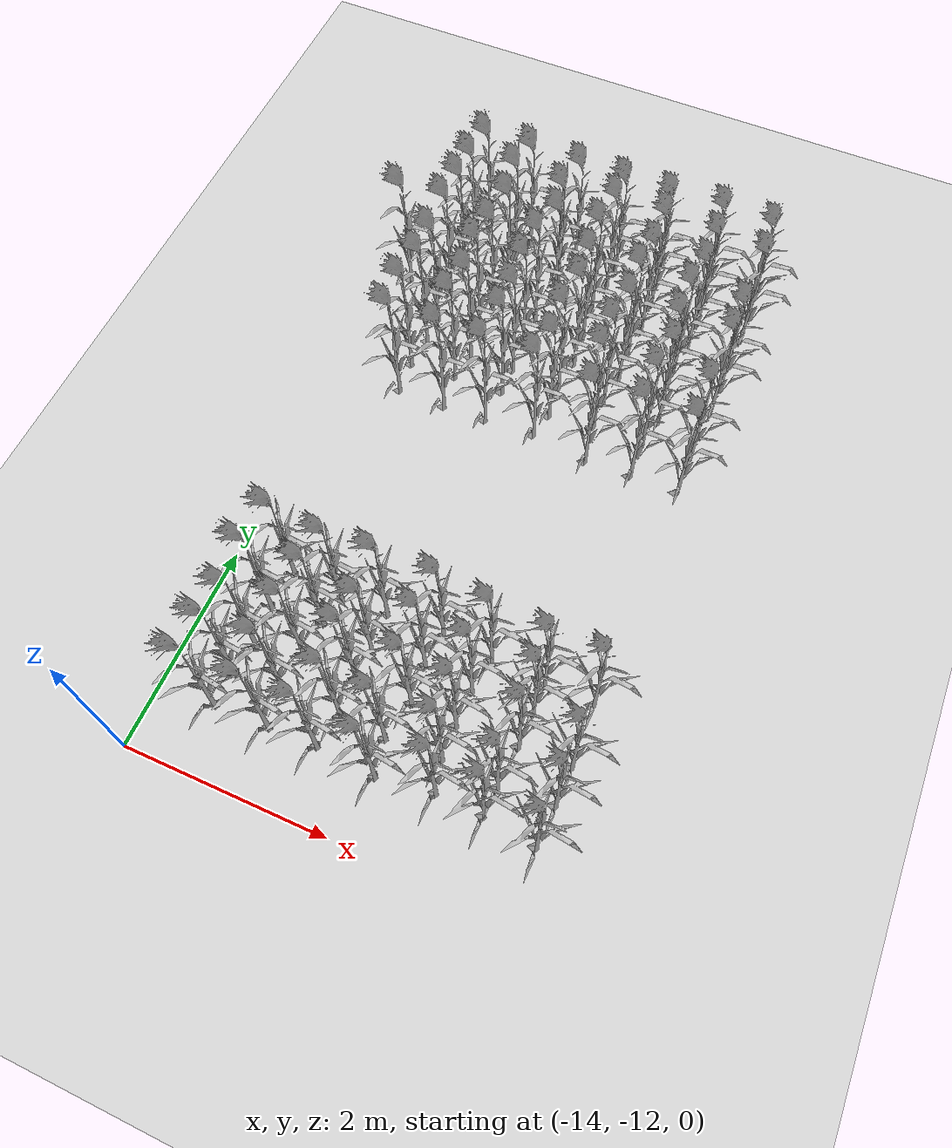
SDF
<sdf version="1.7">
 <world name="farmland_world">
  <model name="ground_plane">
   <static>1</static>
   <link name="link">
    <collision name="collision">
     <geometry><plane><normal>0 0 1</normal><size>40.0 40.0</size></plane></geometry>
     <surface><friction><ode><mu>100</mu><mu2>50</mu2></ode></friction></surface>
    </collision>
    <visual name="visual">
     <cast_shadows>0</cast_shadows>
     <geometry><plane><normal>0 0 1</normal><size>40.0 40.0</size></plane></geometry>
     <material>
      <script><uri>file://media/materials/scripts/gazebo.material</uri><name>Gazebo/Grey</name></script>
     </material>
    </visual>
   </link>
  </model>
  <model name="tree_3_2033">
   <static>1</static>
   <link name="link">
    <collision name="collision">
     <geometry><mesh><uri>model://Corn_low_poly/corn.obj</uri><scale>1 1 1</scale></mesh></geometry>
     <surface><friction><ode><mu>100</mu><mu2>50</mu2></ode></friction></surface>
    </collision>
    <visual name="visual">
     <geometry><mesh><uri>model://Corn_low_poly/corn.obj</uri><scale>1 1 1</scale></mesh></geometry>
    </visual>
   </link>
   <pose>-10.307350498866327 -10.979306485411822 0 0 0 0</pose>
  </model>
  <model name="tree_3_2034">
   <static>1</static>
   <link name="link">
    <collision name="collision">
     <geometry><mesh><uri>model://Corn_low_poly/corn.obj</uri><scale>1 1 1</scale></mesh></geometry>
     <surface><friction><ode><mu>100</mu><mu2>50</mu2></ode></friction></surface>
    </collision>
    <visual name="visual">
     <geometry><mesh><uri>model://Corn_low_poly/corn.obj</uri><scale>1 1 1</scale></mesh></geometry>
    </visual>
   </link>
   <pose>-10.81992295470354 -11.039050765362639 0 0 0 0</pose>
  </model>
  <model name="tree_3_2035">
   <static>1</static>
   <link name="link">
    <collision name="collision">
     <geometry><mesh><uri>model://Corn_low_poly/corn.obj</uri><scale>1 1 1</scale></mesh></geometry>
     <surface><friction><ode><mu>100</mu><mu2>50</mu2></ode></friction></surface>
    </collision>
    <visual name="visual">
     <geometry><mesh><uri>model://Corn_low_poly/corn.obj</uri><scale>1 1 1</scale></mesh></geometry>
    </visual>
   </link>
   <pose>-11.359939570982707 -10.996293365266883 0 0 0 0</pose>
  </model>
  <model name="tree_3_2036">
   <static>1</static>
   <link name="link">
    <collision name="collision">
     <geometry><mesh><uri>model://Corn_low_poly/corn.obj</uri><scale>1 1 1</scale></mesh></geometry>
     <surface><friction><ode><mu>100</mu><mu2>50</mu2></ode></friction></surface>
    </collision>
    <visual name="visual">
     <geometry><mesh><uri>model://Corn_low_poly/corn.obj</uri><scale>1 1 1</scale></mesh></geometry>
    </visual>
   </link>
   <pose>-11.891780618892657 -11.02901635230057 0 0 0 0</pose>
  </model>
  <model name="tree_3_2037">
   <static>1</static>
   <link name="link">
    <collision name="collision">
     <geometry><mesh><uri>model://Corn_low_poly/corn.obj</uri><scale>1 1 1</scale></mesh></geometry>
     <surface><friction><ode><mu>100</mu><mu2>50</mu2></ode></friction></surface>
    </collision>
    <visual name="visual">
     <geometry><mesh><uri>model://Corn_low_poly/corn.obj</uri><scale>1 1 1</scale></mesh></geometry>
    </visual>
   </link>
   <pose>-12.338765330459179 -11.003636147406816 0 0 0 0</pose>
  </model>
  <model name="tree_3_2038">
   <static>1</static>
   <link name="link">
    <collision name="collision">
     <geometry><mesh><uri>model://Corn_low_poly/corn.obj</uri><scale>1 1 1</scale></mesh></geometry>
     <surface><friction><ode><mu>100</mu><mu2>50</mu2></ode></friction></surface>
    </collision>
    <visual name="visual">
     <geometry><mesh><uri>model://Corn_low_poly/corn.obj</uri><scale>1 1 1</scale></mesh></geometry>
    </visual>
   </link>
   <pose>-12.9247347001114 -10.987375476978293 0 0 0 0</pose>
  </model>
  <model name="tree_3_2039">
   <static>1</static>
   <link name="link">
    <collision name="collision">
     <geometry><mesh><uri>model://Corn_low_poly/corn.obj</uri><scale>1 1 1</scale></mesh></geometry>
     <surface><friction><ode><mu>100</mu><mu2>50</mu2></ode></friction></surface>
    </collision>
    <visual name="visual">
     <geometry><mesh><uri>model://Corn_low_poly/corn.obj</uri><scale>1 1 1</scale></mesh></geometry>
    </visual>
   </link>
   <pose>-13.39242253831518 -11.022844953697483 0 0 0 0</pose>
  </model>
  <model name="tree_3_2067">
   <static>1</static>
   <link name="link">
    <collision name="collision">
     <geometry><mesh><uri>model://Corn_low_poly/corn.obj</uri><scale>1 1 1</scale></mesh></geometry>
     <surface><friction><ode><mu>100</mu><mu2>50</mu2></ode></friction></surface>
    </collision>
    <visual name="visual">
     <geometry><mesh><uri>model://Corn_low_poly/corn.obj</uri><scale>1 1 1</scale></mesh></geometry>
    </visual>
   </link>
   <pose>-10.32691565260788 -11.36323301262793 0 0 0 0</pose>
  </model>
  <model name="tree_3_2068">
   <static>1</static>
   <link name="link">
    <collision name="collision">
     <geometry><mesh><uri>model://Corn_low_poly/corn.obj</uri><scale>1 1 1</scale></mesh></geometry>
     <surface><friction><ode><mu>100</mu><mu2>50</mu2></ode></friction></surface>
    </collision>
    <visual name="visual">
     <geometry><mesh><uri>model://Corn_low_poly/corn.obj</uri><scale>1 1 1</scale></mesh></geometry>
    </visual>
   </link>
   <pose>-10.834406711724855 -11.301494776505798 0 0 0 0</pose>
  </model>
  <model name="tree_3_2069">
   <static>1</static>
   <link name="link">
    <collision name="collision">
     <geometry><mesh><uri>model://Corn_low_poly/corn.obj</uri><scale>1 1 1</scale></mesh></geometry>
     <surface><friction><ode><mu>100</mu><mu2>50</mu2></ode></friction></surface>
    </collision>
    <visual name="visual">
     <geometry><mesh><uri>model://Corn_low_poly/corn.obj</uri><scale>1 1 1</scale></mesh></geometry>
    </visual>
   </link>
   <pose>-11.28816366792222 -11.285866579094362 0 0 0 0</pose>
  </model>
  <model name="tree_3_2070">
   <static>1</static>
   <link name="link">
    <collision name="collision">
     <geometry><mesh><uri>model://Corn_low_poly/corn.obj</uri><scale>1 1 1</scale></mesh></geometry>
     <surface><friction><ode><mu>100</mu><mu2>50</mu2></ode></friction></surface>
    </collision>
    <visual name="visual">
     <geometry><mesh><uri>model://Corn_low_poly/corn.obj</uri><scale>1 1 1</scale></mesh></geometry>
    </visual>
   </link>
   <pose>-11.828668313591823 -11.363795740996746 0 0 0 0</pose>
  </model>
  <model name="tree_3_2071">
   <static>1</static>
   <link name="link">
    <collision name="collision">
     <geometry><mesh><uri>model://Corn_low_poly/corn.obj</uri><scale>1 1 1</scale></mesh></geometry>
     <surface><friction><ode><mu>100</mu><mu2>50</mu2></ode></friction></surface>
    </collision>
    <visual name="visual">
     <geometry><mesh><uri>model://Corn_low_poly/corn.obj</uri><scale>1 1 1</scale></mesh></geometry>
    </visual>
   </link>
   <pose>-12.41205175723617 -11.323564533377777 0 0 0 0</pose>
  </model>
  <model name="tree_3_2072">
   <static>1</static>
   <link name="link">
    <collision name="collision">
     <geometry><mesh><uri>model://Corn_low_poly/corn.obj</uri><scale>1 1 1</scale></mesh></geometry>
     <surface><friction><ode><mu>100</mu><mu2>50</mu2></ode></friction></surface>
    </collision>
    <visual name="visual">
     <geometry><mesh><uri>model://Corn_low_poly/corn.obj</uri><scale>1 1 1</scale></mesh></geometry>
    </visual>
   </link>
   <pose>-12.877377553456837 -11.341753962467255 0 0 0 0</pose>
  </model>
  <model name="tree_3_2073">
   <static>1</static>
   <link name="link">
    <collision name="collision">
     <geometry><mesh><uri>model://Corn_low_poly/corn.obj</uri><scale>1 1 1</scale></mesh></geometry>
     <surface><friction><ode><mu>100</mu><mu2>50</mu2></ode></friction></surface>
    </collision>
    <visual name="visual">
     <geometry><mesh><uri>model://Corn_low_poly/corn.obj</uri><scale>1 1 1</scale></mesh></geometry>
    </visual>
   </link>
   <pose>-13.414365116756489 -11.351254456588023 0 0 0 0</pose>
  </model>
  <model name="tree_3_2135">
   <static>1</static>
   <link name="link">
    <collision name="collision">
     <geometry><mesh><uri>model://Corn_low_poly/corn.obj</uri><scale>1 1 1</scale></mesh></geometry>
     <surface><friction><ode><mu>100</mu><mu2>50</mu2></ode></friction></surface>
    </collision>
    <visual name="visual">
     <geometry><mesh><uri>model://Corn_low_poly/corn.obj</uri><scale>1 1 1</scale></mesh></geometry>
    </visual>
   </link>
   <pose>-10.322381252801687 -10.029420461395906 0 0 0 0</pose>
  </model>
  <model name="tree_3_2136">
   <static>1</static>
   <link name="link">
    <collision name="collision">
     <geometry><mesh><uri>model://Corn_low_poly/corn.obj</uri><scale>1 1 1</scale></mesh></geometry>
     <surface><friction><ode><mu>100</mu><mu2>50</mu2></ode></friction></surface>
    </collision>
    <visual name="visual">
     <geometry><mesh><uri>model://Corn_low_poly/corn.obj</uri><scale>1 1 1</scale></mesh></geometry>
    </visual>
   </link>
   <pose>-10.792267677956493 -10.03441021594048 0 0 0 0</pose>
  </model>
  <model name="tree_3_2137">
   <static>1</static>
   <link name="link">
    <collision name="collision">
     <geometry><mesh><uri>model://Corn_low_poly/corn.obj</uri><scale>1 1 1</scale></mesh></geometry>
     <surface><friction><ode><mu>100</mu><mu2>50</mu2></ode></friction></surface>
    </collision>
    <visual name="visual">
     <geometry><mesh><uri>model://Corn_low_poly/corn.obj</uri><scale>1 1 1</scale></mesh></geometry>
    </visual>
   </link>
   <pose>-11.323362705324373 -10.004644729402486 0 0 0 0</pose>
  </model>
  <model name="tree_3_2138">
   <static>1</static>
   <link name="link">
    <collision name="collision">
     <geometry><mesh><uri>model://Corn_low_poly/corn.obj</uri><scale>1 1 1</scale></mesh></geometry>
     <surface><friction><ode><mu>100</mu><mu2>50</mu2></ode></friction></surface>
    </collision>
    <visual name="visual">
     <geometry><mesh><uri>model://Corn_low_poly/corn.obj</uri><scale>1 1 1</scale></mesh></geometry>
    </visual>
   </link>
   <pose>-11.820277136131066 -9.956496935745315 0 0 0 0</pose>
  </model>
  <model name="tree_3_2139">
   <static>1</static>
   <link name="link">
    <collision name="collision">
     <geometry><mesh><uri>model://Corn_low_poly/corn.obj</uri><scale>1 1 1</scale></mesh></geometry>
     <surface><friction><ode><mu>100</mu><mu2>50</mu2></ode></friction></surface>
    </collision>
    <visual name="visual">
     <geometry><mesh><uri>model://Corn_low_poly/corn.obj</uri><scale>1 1 1</scale></mesh></geometry>
    </visual>
   </link>
   <pose>-12.385328542567578 -9.96827018852244 0 0 0 0</pose>
  </model>
  <model name="tree_3_2140">
   <static>1</static>
   <link name="link">
    <collision name="collision">
     <geometry><mesh><uri>model://Corn_low_poly/corn.obj</uri><scale>1 1 1</scale></mesh></geometry>
     <surface><friction><ode><mu>100</mu><mu2>50</mu2></ode></friction></surface>
    </collision>
    <visual name="visual">
     <geometry><mesh><uri>model://Corn_low_poly/corn.obj</uri><scale>1 1 1</scale></mesh></geometry>
    </visual>
   </link>
   <pose>-12.839907839363491 -10.003667486970558 0 0 0 0</pose>
  </model>
  <model name="tree_3_2141">
   <static>1</static>
   <link name="link">
    <collision name="collision">
     <geometry><mesh><uri>model://Corn_low_poly/corn.obj</uri><scale>1 1 1</scale></mesh></geometry>
     <surface><friction><ode><mu>100</mu><mu2>50</mu2></ode></friction></surface>
    </collision>
    <visual name="visual">
     <geometry><mesh><uri>model://Corn_low_poly/corn.obj</uri><scale>1 1 1</scale></mesh></geometry>
    </visual>
   </link>
   <pose>-13.353769830053015 -9.954711126555615 0 0 0 0</pose>
  </model>
  <model name="tree_3_2170">
   <static>1</static>
   <link name="link">
    <collision name="collision">
     <geometry><mesh><uri>model://Corn_low_poly/corn.obj</uri><scale>1 1 1</scale></mesh></geometry>
     <surface><friction><ode><mu>100</mu><mu2>50</mu2></ode></friction></surface>
    </collision>
    <visual name="visual">
     <geometry><mesh><uri>model://Corn_low_poly/corn.obj</uri><scale>1 1 1</scale></mesh></geometry>
    </visual>
   </link>
   <pose>-10.78709359358121 -10.316285638599307 0 0 0 0</pose>
  </model>
  <model name="tree_3_2171">
   <static>1</static>
   <link name="link">
    <collision name="collision">
     <geometry><mesh><uri>model://Corn_low_poly/corn.obj</uri><scale>1 1 1</scale></mesh></geometry>
     <surface><friction><ode><mu>100</mu><mu2>50</mu2></ode></friction></surface>
    </collision>
    <visual name="visual">
     <geometry><mesh><uri>model://Corn_low_poly/corn.obj</uri><scale>1 1 1</scale></mesh></geometry>
    </visual>
   </link>
   <pose>-11.368813453165258 -10.339103673645646 0 0 0 0</pose>
  </model>
  <model name="tree_3_2172">
   <static>1</static>
   <link name="link">
    <collision name="collision">
     <geometry><mesh><uri>model://Corn_low_poly/corn.obj</uri><scale>1 1 1</scale></mesh></geometry>
     <surface><friction><ode><mu>100</mu><mu2>50</mu2></ode></friction></surface>
    </collision>
    <visual name="visual">
     <geometry><mesh><uri>model://Corn_low_poly/corn.obj</uri><scale>1 1 1</scale></mesh></geometry>
    </visual>
   </link>
   <pose>-11.855104720534117 -10.281028314570497 0 0 0 0</pose>
  </model>
  <model name="tree_3_2173">
   <static>1</static>
   <link name="link">
    <collision name="collision">
     <geometry><mesh><uri>model://Corn_low_poly/corn.obj</uri><scale>1 1 1</scale></mesh></geometry>
     <surface><friction><ode><mu>100</mu><mu2>50</mu2></ode></friction></surface>
    </collision>
    <visual name="visual">
     <geometry><mesh><uri>model://Corn_low_poly/corn.obj</uri><scale>1 1 1</scale></mesh></geometry>
    </visual>
   </link>
   <pose>-12.343811437042737 -10.365229025284668 0 0 0 0</pose>
  </model>
  <model name="tree_3_2174">
   <static>1</static>
   <link name="link">
    <collision name="collision">
     <geometry><mesh><uri>model://Corn_low_poly/corn.obj</uri><scale>1 1 1</scale></mesh></geometry>
     <surface><friction><ode><mu>100</mu><mu2>50</mu2></ode></friction></surface>
    </collision>
    <visual name="visual">
     <geometry><mesh><uri>model://Corn_low_poly/corn.obj</uri><scale>1 1 1</scale></mesh></geometry>
    </visual>
   </link>
   <pose>-12.884628849657926 -10.283753214279782 0 0 0 0</pose>
  </model>
  <model name="tree_3_2175">
   <static>1</static>
   <link name="link">
    <collision name="collision">
     <geometry><mesh><uri>model://Corn_low_poly/corn.obj</uri><scale>1 1 1</scale></mesh></geometry>
     <surface><friction><ode><mu>100</mu><mu2>50</mu2></ode></friction></surface>
    </collision>
    <visual name="visual">
     <geometry><mesh><uri>model://Corn_low_poly/corn.obj</uri><scale>1 1 1</scale></mesh></geometry>
    </visual>
   </link>
   <pose>-13.409863428326483 -10.322290264718374 0 0 0 0</pose>
  </model>
  <model name="tree_3_2203">
   <static>1</static>
   <link name="link">
    <collision name="collision">
     <geometry><mesh><uri>model://Corn_low_poly/corn.obj</uri><scale>1 1 1</scale></mesh></geometry>
     <surface><friction><ode><mu>100</mu><mu2>50</mu2></ode></friction></surface>
    </collision>
    <visual name="visual">
     <geometry><mesh><uri>model://Corn_low_poly/corn.obj</uri><scale>1 1 1</scale></mesh></geometry>
    </visual>
   </link>
   <pose>-10.298913966235999 -10.620292171667943 0 0 0 0</pose>
  </model>
  <model name="tree_3_2204">
   <static>1</static>
   <link name="link">
    <collision name="collision">
     <geometry><mesh><uri>model://Corn_low_poly/corn.obj</uri><scale>1 1 1</scale></mesh></geometry>
     <surface><friction><ode><mu>100</mu><mu2>50</mu2></ode></friction></surface>
    </collision>
    <visual name="visual">
     <geometry><mesh><uri>model://Corn_low_poly/corn.obj</uri><scale>1 1 1</scale></mesh></geometry>
    </visual>
   </link>
   <pose>-10.791648517669202 -10.635758434395454 0 0 0 0</pose>
  </model>
  <model name="tree_3_2205">
   <static>1</static>
   <link name="link">
    <collision name="collision">
     <geometry><mesh><uri>model://Corn_low_poly/corn.obj</uri><scale>1 1 1</scale></mesh></geometry>
     <surface><friction><ode><mu>100</mu><mu2>50</mu2></ode></friction></surface>
    </collision>
    <visual name="visual">
     <geometry><mesh><uri>model://Corn_low_poly/corn.obj</uri><scale>1 1 1</scale></mesh></geometry>
    </visual>
   </link>
   <pose>-11.370157447138547 -10.680607783552707 0 0 0 0</pose>
  </model>
  <model name="tree_3_2206">
   <static>1</static>
   <link name="link">
    <collision name="collision">
     <geometry><mesh><uri>model://Corn_low_poly/corn.obj</uri><scale>1 1 1</scale></mesh></geometry>
     <surface><friction><ode><mu>100</mu><mu2>50</mu2></ode></friction></surface>
    </collision>
    <visual name="visual">
     <geometry><mesh><uri>model://Corn_low_poly/corn.obj</uri><scale>1 1 1</scale></mesh></geometry>
    </visual>
   </link>
   <pose>-11.818222489429258 -10.651178152618341 0 0 0 0</pose>
  </model>
  <model name="tree_3_2207">
   <static>1</static>
   <link name="link">
    <collision name="collision">
     <geometry><mesh><uri>model://Corn_low_poly/corn.obj</uri><scale>1 1 1</scale></mesh></geometry>
     <surface><friction><ode><mu>100</mu><mu2>50</mu2></ode></friction></surface>
    </collision>
    <visual name="visual">
     <geometry><mesh><uri>model://Corn_low_poly/corn.obj</uri><scale>1 1 1</scale></mesh></geometry>
    </visual>
   </link>
   <pose>-12.372275027510803 -10.638599826931502 0 0 0 0</pose>
  </model>
  <model name="tree_3_2208">
   <static>1</static>
   <link name="link">
    <collision name="collision">
     <geometry><mesh><uri>model://Corn_low_poly/corn.obj</uri><scale>1 1 1</scale></mesh></geometry>
     <surface><friction><ode><mu>100</mu><mu2>50</mu2></ode></friction></surface>
    </collision>
    <visual name="visual">
     <geometry><mesh><uri>model://Corn_low_poly/corn.obj</uri><scale>1 1 1</scale></mesh></geometry>
    </visual>
   </link>
   <pose>-12.910007763974736 -10.624527731855334 0 0 0 0</pose>
  </model>
  <model name="tree_3_2209">
   <static>1</static>
   <link name="link">
    <collision name="collision">
     <geometry><mesh><uri>model://Corn_low_poly/corn.obj</uri><scale>1 1 1</scale></mesh></geometry>
     <surface><friction><ode><mu>100</mu><mu2>50</mu2></ode></friction></surface>
    </collision>
    <visual name="visual">
     <geometry><mesh><uri>model://Corn_low_poly/corn.obj</uri><scale>1 1 1</scale></mesh></geometry>
    </visual>
   </link>
   <pose>-13.347256940262865 -10.71877001494929 0 0 0 0</pose>
  </model>
  <model name="tree_3_2238">
   <static>1</static>
   <link name="link">
    <collision name="collision">
     <geometry><mesh><uri>model://Corn_low_poly/corn.obj</uri><scale>1 1 1</scale></mesh></geometry>
     <surface><friction><ode><mu>100</mu><mu2>50</mu2></ode></friction></surface>
    </collision>
    <visual name="visual">
     <geometry><mesh><uri>model://Corn_low_poly/corn.obj</uri><scale>1 1 1</scale></mesh></geometry>
    </visual>
   </link>
   <pose>-10.774418293755348 -7.004405783917082 0 0 0 0</pose>
  </model>
  <model name="tree_3_2239">
   <static>1</static>
   <link name="link">
    <collision name="collision">
     <geometry><mesh><uri>model://Corn_low_poly/corn.obj</uri><scale>1 1 1</scale></mesh></geometry>
     <surface><friction><ode><mu>100</mu><mu2>50</mu2></ode></friction></surface>
    </collision>
    <visual name="visual">
     <geometry><mesh><uri>model://Corn_low_poly/corn.obj</uri><scale>1 1 1</scale></mesh></geometry>
    </visual>
   </link>
   <pose>-11.369587290758032 -7.003580036984305 0 0 0 0</pose>
  </model>
  <model name="tree_3_2240">
   <static>1</static>
   <link name="link">
    <collision name="collision">
     <geometry><mesh><uri>model://Corn_low_poly/corn.obj</uri><scale>1 1 1</scale></mesh></geometry>
     <surface><friction><ode><mu>100</mu><mu2>50</mu2></ode></friction></surface>
    </collision>
    <visual name="visual">
     <geometry><mesh><uri>model://Corn_low_poly/corn.obj</uri><scale>1 1 1</scale></mesh></geometry>
    </visual>
   </link>
   <pose>-11.858998601300401 -7.020466672052854 0 0 0 0</pose>
  </model>
  <model name="tree_3_2241">
   <static>1</static>
   <link name="link">
    <collision name="collision">
     <geometry><mesh><uri>model://Corn_low_poly/corn.obj</uri><scale>1 1 1</scale></mesh></geometry>
     <surface><friction><ode><mu>100</mu><mu2>50</mu2></ode></friction></surface>
    </collision>
    <visual name="visual">
     <geometry><mesh><uri>model://Corn_low_poly/corn.obj</uri><scale>1 1 1</scale></mesh></geometry>
    </visual>
   </link>
   <pose>-12.37816918268721 -6.993917155181163 0 0 0 0</pose>
  </model>
  <model name="tree_3_2242">
   <static>1</static>
   <link name="link">
    <collision name="collision">
     <geometry><mesh><uri>model://Corn_low_poly/corn.obj</uri><scale>1 1 1</scale></mesh></geometry>
     <surface><friction><ode><mu>100</mu><mu2>50</mu2></ode></friction></surface>
    </collision>
    <visual name="visual">
     <geometry><mesh><uri>model://Corn_low_poly/corn.obj</uri><scale>1 1 1</scale></mesh></geometry>
    </visual>
   </link>
   <pose>-12.847229473637846 -7.018010919337648 0 0 0 0</pose>
  </model>
  <model name="tree_3_2243">
   <static>1</static>
   <link name="link">
    <collision name="collision">
     <geometry><mesh><uri>model://Corn_low_poly/corn.obj</uri><scale>1 1 1</scale></mesh></geometry>
     <surface><friction><ode><mu>100</mu><mu2>50</mu2></ode></friction></surface>
    </collision>
    <visual name="visual">
     <geometry><mesh><uri>model://Corn_low_poly/corn.obj</uri><scale>1 1 1</scale></mesh></geometry>
    </visual>
   </link>
   <pose>-13.35313441499276 -7.012483144186506 0 0 0 0</pose>
  </model>
  <model name="tree_3_2271">
   <static>1</static>
   <link name="link">
    <collision name="collision">
     <geometry><mesh><uri>model://Corn_low_poly/corn.obj</uri><scale>1 1 1</scale></mesh></geometry>
     <surface><friction><ode><mu>100</mu><mu2>50</mu2></ode></friction></surface>
    </collision>
    <visual name="visual">
     <geometry><mesh><uri>model://Corn_low_poly/corn.obj</uri><scale>1 1 1</scale></mesh></geometry>
    </visual>
   </link>
   <pose>-10.34128375789242 -7.280189715513444 0 0 0 0</pose>
  </model>
  <model name="tree_3_2272">
   <static>1</static>
   <link name="link">
    <collision name="collision">
     <geometry><mesh><uri>model://Corn_low_poly/corn.obj</uri><scale>1 1 1</scale></mesh></geometry>
     <surface><friction><ode><mu>100</mu><mu2>50</mu2></ode></friction></surface>
    </collision>
    <visual name="visual">
     <geometry><mesh><uri>model://Corn_low_poly/corn.obj</uri><scale>1 1 1</scale></mesh></geometry>
    </visual>
   </link>
   <pose>-10.832992292534604 -7.334572537142624 0 0 0 0</pose>
  </model>
  <model name="tree_3_2273">
   <static>1</static>
   <link name="link">
    <collision name="collision">
     <geometry><mesh><uri>model://Corn_low_poly/corn.obj</uri><scale>1 1 1</scale></mesh></geometry>
     <surface><friction><ode><mu>100</mu><mu2>50</mu2></ode></friction></surface>
    </collision>
    <visual name="visual">
     <geometry><mesh><uri>model://Corn_low_poly/corn.obj</uri><scale>1 1 1</scale></mesh></geometry>
    </visual>
   </link>
   <pose>-11.361853387842224 -7.307928070832824 0 0 0 0</pose>
  </model>
  <model name="tree_3_2274">
   <static>1</static>
   <link name="link">
    <collision name="collision">
     <geometry><mesh><uri>model://Corn_low_poly/corn.obj</uri><scale>1 1 1</scale></mesh></geometry>
     <surface><friction><ode><mu>100</mu><mu2>50</mu2></ode></friction></surface>
    </collision>
    <visual name="visual">
     <geometry><mesh><uri>model://Corn_low_poly/corn.obj</uri><scale>1 1 1</scale></mesh></geometry>
    </visual>
   </link>
   <pose>-11.822804007819263 -7.36818975657166 0 0 0 0</pose>
  </model>
  <model name="tree_3_2275">
   <static>1</static>
   <link name="link">
    <collision name="collision">
     <geometry><mesh><uri>model://Corn_low_poly/corn.obj</uri><scale>1 1 1</scale></mesh></geometry>
     <surface><friction><ode><mu>100</mu><mu2>50</mu2></ode></friction></surface>
    </collision>
    <visual name="visual">
     <geometry><mesh><uri>model://Corn_low_poly/corn.obj</uri><scale>1 1 1</scale></mesh></geometry>
    </visual>
   </link>
   <pose>-12.3761463999511 -7.289922144518633 0 0 0 0</pose>
  </model>
  <model name="tree_3_2276">
   <static>1</static>
   <link name="link">
    <collision name="collision">
     <geometry><mesh><uri>model://Corn_low_poly/corn.obj</uri><scale>1 1 1</scale></mesh></geometry>
     <surface><friction><ode><mu>100</mu><mu2>50</mu2></ode></friction></surface>
    </collision>
    <visual name="visual">
     <geometry><mesh><uri>model://Corn_low_poly/corn.obj</uri><scale>1 1 1</scale></mesh></geometry>
    </visual>
   </link>
   <pose>-12.894502135377095 -7.309692186566632 0 0 0 0</pose>
  </model>
  <model name="tree_3_2277">
   <static>1</static>
   <link name="link">
    <collision name="collision">
     <geometry><mesh><uri>model://Corn_low_poly/corn.obj</uri><scale>1 1 1</scale></mesh></geometry>
     <surface><friction><ode><mu>100</mu><mu2>50</mu2></ode></friction></surface>
    </collision>
    <visual name="visual">
     <geometry><mesh><uri>model://Corn_low_poly/corn.obj</uri><scale>1 1 1</scale></mesh></geometry>
    </visual>
   </link>
   <pose>-13.377198322488022 -7.345659528068295 0 0 0 0</pose>
  </model>
  <model name="tree_3_2305">
   <static>1</static>
   <link name="link">
    <collision name="collision">
     <geometry><mesh><uri>model://Corn_low_poly/corn.obj</uri><scale>1 1 1</scale></mesh></geometry>
     <surface><friction><ode><mu>100</mu><mu2>50</mu2></ode></friction></surface>
    </collision>
    <visual name="visual">
     <geometry><mesh><uri>model://Corn_low_poly/corn.obj</uri><scale>1 1 1</scale></mesh></geometry>
    </visual>
   </link>
   <pose>-10.336242859964605 -7.691790020663317 0 0 0 0</pose>
  </model>
  <model name="tree_3_2306">
   <static>1</static>
   <link name="link">
    <collision name="collision">
     <geometry><mesh><uri>model://Corn_low_poly/corn.obj</uri><scale>1 1 1</scale></mesh></geometry>
     <surface><friction><ode><mu>100</mu><mu2>50</mu2></ode></friction></surface>
    </collision>
    <visual name="visual">
     <geometry><mesh><uri>model://Corn_low_poly/corn.obj</uri><scale>1 1 1</scale></mesh></geometry>
    </visual>
   </link>
   <pose>-10.822582765333085 -7.698055737197938 0 0 0 0</pose>
  </model>
  <model name="tree_3_2307">
   <static>1</static>
   <link name="link">
    <collision name="collision">
     <geometry><mesh><uri>model://Corn_low_poly/corn.obj</uri><scale>1 1 1</scale></mesh></geometry>
     <surface><friction><ode><mu>100</mu><mu2>50</mu2></ode></friction></surface>
    </collision>
    <visual name="visual">
     <geometry><mesh><uri>model://Corn_low_poly/corn.obj</uri><scale>1 1 1</scale></mesh></geometry>
    </visual>
   </link>
   <pose>-11.295320717079084 -7.719378565063959 0 0 0 0</pose>
  </model>
  <model name="tree_3_2308">
   <static>1</static>
   <link name="link">
    <collision name="collision">
     <geometry><mesh><uri>model://Corn_low_poly/corn.obj</uri><scale>1 1 1</scale></mesh></geometry>
     <surface><friction><ode><mu>100</mu><mu2>50</mu2></ode></friction></surface>
    </collision>
    <visual name="visual">
     <geometry><mesh><uri>model://Corn_low_poly/corn.obj</uri><scale>1 1 1</scale></mesh></geometry>
    </visual>
   </link>
   <pose>-11.882872772425662 -7.638138874195182 0 0 0 0</pose>
  </model>
  <model name="tree_3_2309">
   <static>1</static>
   <link name="link">
    <collision name="collision">
     <geometry><mesh><uri>model://Corn_low_poly/corn.obj</uri><scale>1 1 1</scale></mesh></geometry>
     <surface><friction><ode><mu>100</mu><mu2>50</mu2></ode></friction></surface>
    </collision>
    <visual name="visual">
     <geometry><mesh><uri>model://Corn_low_poly/corn.obj</uri><scale>1 1 1</scale></mesh></geometry>
    </visual>
   </link>
   <pose>-12.400830420212648 -7.6703920460120045 0 0 0 0</pose>
  </model>
  <model name="tree_3_2310">
   <static>1</static>
   <link name="link">
    <collision name="collision">
     <geometry><mesh><uri>model://Corn_low_poly/corn.obj</uri><scale>1 1 1</scale></mesh></geometry>
     <surface><friction><ode><mu>100</mu><mu2>50</mu2></ode></friction></surface>
    </collision>
    <visual name="visual">
     <geometry><mesh><uri>model://Corn_low_poly/corn.obj</uri><scale>1 1 1</scale></mesh></geometry>
    </visual>
   </link>
   <pose>-12.851526008181134 -7.687665701132783 0 0 0 0</pose>
  </model>
  <model name="tree_3_2311">
   <static>1</static>
   <link name="link">
    <collision name="collision">
     <geometry><mesh><uri>model://Corn_low_poly/corn.obj</uri><scale>1 1 1</scale></mesh></geometry>
     <surface><friction><ode><mu>100</mu><mu2>50</mu2></ode></friction></surface>
    </collision>
    <visual name="visual">
     <geometry><mesh><uri>model://Corn_low_poly/corn.obj</uri><scale>1 1 1</scale></mesh></geometry>
    </visual>
   </link>
   <pose>-13.350223474332894 -7.688109689496971 0 0 0 0</pose>
  </model>
  <model name="tree_3_2340">
   <static>1</static>
   <link name="link">
    <collision name="collision">
     <geometry><mesh><uri>model://Corn_low_poly/corn.obj</uri><scale>1 1 1</scale></mesh></geometry>
     <surface><friction><ode><mu>100</mu><mu2>50</mu2></ode></friction></surface>
    </collision>
    <visual name="visual">
     <geometry><mesh><uri>model://Corn_low_poly/corn.obj</uri><scale>1 1 1</scale></mesh></geometry>
    </visual>
   </link>
   <pose>-10.793771199938888 -6.02690859998546 0 0 0 0</pose>
  </model>
  <model name="tree_3_2341">
   <static>1</static>
   <link name="link">
    <collision name="collision">
     <geometry><mesh><uri>model://Corn_low_poly/corn.obj</uri><scale>1 1 1</scale></mesh></geometry>
     <surface><friction><ode><mu>100</mu><mu2>50</mu2></ode></friction></surface>
    </collision>
    <visual name="visual">
     <geometry><mesh><uri>model://Corn_low_poly/corn.obj</uri><scale>1 1 1</scale></mesh></geometry>
    </visual>
   </link>
   <pose>-11.318159159352668 -6.010869179267386 0 0 0 0</pose>
  </model>
  <model name="tree_3_2342">
   <static>1</static>
   <link name="link">
    <collision name="collision">
     <geometry><mesh><uri>model://Corn_low_poly/corn.obj</uri><scale>1 1 1</scale></mesh></geometry>
     <surface><friction><ode><mu>100</mu><mu2>50</mu2></ode></friction></surface>
    </collision>
    <visual name="visual">
     <geometry><mesh><uri>model://Corn_low_poly/corn.obj</uri><scale>1 1 1</scale></mesh></geometry>
    </visual>
   </link>
   <pose>-11.89540683501769 -5.968928841276372 0 0 0 0</pose>
  </model>
  <model name="tree_3_2343">
   <static>1</static>
   <link name="link">
    <collision name="collision">
     <geometry><mesh><uri>model://Corn_low_poly/corn.obj</uri><scale>1 1 1</scale></mesh></geometry>
     <surface><friction><ode><mu>100</mu><mu2>50</mu2></ode></friction></surface>
    </collision>
    <visual name="visual">
     <geometry><mesh><uri>model://Corn_low_poly/corn.obj</uri><scale>1 1 1</scale></mesh></geometry>
    </visual>
   </link>
   <pose>-12.314016867554942 -5.996489932553749 0 0 0 0</pose>
  </model>
  <model name="tree_3_2344">
   <static>1</static>
   <link name="link">
    <collision name="collision">
     <geometry><mesh><uri>model://Corn_low_poly/corn.obj</uri><scale>1 1 1</scale></mesh></geometry>
     <surface><friction><ode><mu>100</mu><mu2>50</mu2></ode></friction></surface>
    </collision>
    <visual name="visual">
     <geometry><mesh><uri>model://Corn_low_poly/corn.obj</uri><scale>1 1 1</scale></mesh></geometry>
    </visual>
   </link>
   <pose>-12.850266021727903 -6.008892193024116 0 0 0 0</pose>
  </model>
  <model name="tree_3_2345">
   <static>1</static>
   <link name="link">
    <collision name="collision">
     <geometry><mesh><uri>model://Corn_low_poly/corn.obj</uri><scale>1 1 1</scale></mesh></geometry>
     <surface><friction><ode><mu>100</mu><mu2>50</mu2></ode></friction></surface>
    </collision>
    <visual name="visual">
     <geometry><mesh><uri>model://Corn_low_poly/corn.obj</uri><scale>1 1 1</scale></mesh></geometry>
    </visual>
   </link>
   <pose>-13.392311870140505 -5.975095952287253 0 0 0 0</pose>
  </model>
  <model name="tree_3_2373">
   <static>1</static>
   <link name="link">
    <collision name="collision">
     <geometry><mesh><uri>model://Corn_low_poly/corn.obj</uri><scale>1 1 1</scale></mesh></geometry>
     <surface><friction><ode><mu>100</mu><mu2>50</mu2></ode></friction></surface>
    </collision>
    <visual name="visual">
     <geometry><mesh><uri>model://Corn_low_poly/corn.obj</uri><scale>1 1 1</scale></mesh></geometry>
    </visual>
   </link>
   <pose>-10.324960746059563 -6.3520626908495 0 0 0 0</pose>
  </model>
  <model name="tree_3_2374">
   <static>1</static>
   <link name="link">
    <collision name="collision">
     <geometry><mesh><uri>model://Corn_low_poly/corn.obj</uri><scale>1 1 1</scale></mesh></geometry>
     <surface><friction><ode><mu>100</mu><mu2>50</mu2></ode></friction></surface>
    </collision>
    <visual name="visual">
     <geometry><mesh><uri>model://Corn_low_poly/corn.obj</uri><scale>1 1 1</scale></mesh></geometry>
    </visual>
   </link>
   <pose>-10.840157349300778 -6.338083989243085 0 0 0 0</pose>
  </model>
  <model name="tree_3_2375">
   <static>1</static>
   <link name="link">
    <collision name="collision">
     <geometry><mesh><uri>model://Corn_low_poly/corn.obj</uri><scale>1 1 1</scale></mesh></geometry>
     <surface><friction><ode><mu>100</mu><mu2>50</mu2></ode></friction></surface>
    </collision>
    <visual name="visual">
     <geometry><mesh><uri>model://Corn_low_poly/corn.obj</uri><scale>1 1 1</scale></mesh></geometry>
    </visual>
   </link>
   <pose>-11.355507542137891 -6.312493726164297 0 0 0 0</pose>
  </model>
  <model name="tree_3_2376">
   <static>1</static>
   <link name="link">
    <collision name="collision">
     <geometry><mesh><uri>model://Corn_low_poly/corn.obj</uri><scale>1 1 1</scale></mesh></geometry>
     <surface><friction><ode><mu>100</mu><mu2>50</mu2></ode></friction></surface>
    </collision>
    <visual name="visual">
     <geometry><mesh><uri>model://Corn_low_poly/corn.obj</uri><scale>1 1 1</scale></mesh></geometry>
    </visual>
   </link>
   <pose>-11.853573095775266 -6.335505064592781 0 0 0 0</pose>
  </model>
  <model name="tree_3_2377">
   <static>1</static>
   <link name="link">
    <collision name="collision">
     <geometry><mesh><uri>model://Corn_low_poly/corn.obj</uri><scale>1 1 1</scale></mesh></geometry>
     <surface><friction><ode><mu>100</mu><mu2>50</mu2></ode></friction></surface>
    </collision>
    <visual name="visual">
     <geometry><mesh><uri>model://Corn_low_poly/corn.obj</uri><scale>1 1 1</scale></mesh></geometry>
    </visual>
   </link>
   <pose>-12.40909381201674 -6.312574355929563 0 0 0 0</pose>
  </model>
  <model name="tree_3_2378">
   <static>1</static>
   <link name="link">
    <collision name="collision">
     <geometry><mesh><uri>model://Corn_low_poly/corn.obj</uri><scale>1 1 1</scale></mesh></geometry>
     <surface><friction><ode><mu>100</mu><mu2>50</mu2></ode></friction></surface>
    </collision>
    <visual name="visual">
     <geometry><mesh><uri>model://Corn_low_poly/corn.obj</uri><scale>1 1 1</scale></mesh></geometry>
    </visual>
   </link>
   <pose>-12.878524863467728 -6.369620834639444 0 0 0 0</pose>
  </model>
  <model name="tree_3_2379">
   <static>1</static>
   <link name="link">
    <collision name="collision">
     <geometry><mesh><uri>model://Corn_low_poly/corn.obj</uri><scale>1 1 1</scale></mesh></geometry>
     <surface><friction><ode><mu>100</mu><mu2>50</mu2></ode></friction></surface>
    </collision>
    <visual name="visual">
     <geometry><mesh><uri>model://Corn_low_poly/corn.obj</uri><scale>1 1 1</scale></mesh></geometry>
    </visual>
   </link>
   <pose>-13.405715914410653 -6.289236382602589 0 0 0 0</pose>
  </model>
  <model name="tree_3_2380">
   <static>1</static>
   <link name="link">
    <collision name="collision">
     <geometry><mesh><uri>model://Corn_low_poly/corn.obj</uri><scale>1 1 1</scale></mesh></geometry>
     <surface><friction><ode><mu>100</mu><mu2>50</mu2></ode></friction></surface>
    </collision>
    <visual name="visual">
     <geometry><mesh><uri>model://Corn_low_poly/corn.obj</uri><scale>1 1 1</scale></mesh></geometry>
    </visual>
   </link>
   <pose>-13.86017891707515 -6.336338719173716 0 0 0 0</pose>
  </model>
  <model name="tree_3_2407">
   <static>1</static>
   <link name="link">
    <collision name="collision">
     <geometry><mesh><uri>model://Corn_low_poly/corn.obj</uri><scale>1 1 1</scale></mesh></geometry>
     <surface><friction><ode><mu>100</mu><mu2>50</mu2></ode></friction></surface>
    </collision>
    <visual name="visual">
     <geometry><mesh><uri>model://Corn_low_poly/corn.obj</uri><scale>1 1 1</scale></mesh></geometry>
    </visual>
   </link>
   <pose>-10.32601029363718 -6.675463454929241 0 0 0 0</pose>
  </model>
  <model name="tree_3_2408">
   <static>1</static>
   <link name="link">
    <collision name="collision">
     <geometry><mesh><uri>model://Corn_low_poly/corn.obj</uri><scale>1 1 1</scale></mesh></geometry>
     <surface><friction><ode><mu>100</mu><mu2>50</mu2></ode></friction></surface>
    </collision>
    <visual name="visual">
     <geometry><mesh><uri>model://Corn_low_poly/corn.obj</uri><scale>1 1 1</scale></mesh></geometry>
    </visual>
   </link>
   <pose>-10.833585873809252 -6.694390400399879 0 0 0 0</pose>
  </model>
  <model name="tree_3_2409">
   <static>1</static>
   <link name="link">
    <collision name="collision">
     <geometry><mesh><uri>model://Corn_low_poly/corn.obj</uri><scale>1 1 1</scale></mesh></geometry>
     <surface><friction><ode><mu>100</mu><mu2>50</mu2></ode></friction></surface>
    </collision>
    <visual name="visual">
     <geometry><mesh><uri>model://Corn_low_poly/corn.obj</uri><scale>1 1 1</scale></mesh></geometry>
    </visual>
   </link>
   <pose>-11.324667499952573 -6.668032738266805 0 0 0 0</pose>
  </model>
  <model name="tree_3_2410">
   <static>1</static>
   <link name="link">
    <collision name="collision">
     <geometry><mesh><uri>model://Corn_low_poly/corn.obj</uri><scale>1 1 1</scale></mesh></geometry>
     <surface><friction><ode><mu>100</mu><mu2>50</mu2></ode></friction></surface>
    </collision>
    <visual name="visual">
     <geometry><mesh><uri>model://Corn_low_poly/corn.obj</uri><scale>1 1 1</scale></mesh></geometry>
    </visual>
   </link>
   <pose>-11.82187778059406 -6.667408351359355 0 0 0 0</pose>
  </model>
  <model name="tree_3_2411">
   <static>1</static>
   <link name="link">
    <collision name="collision">
     <geometry><mesh><uri>model://Corn_low_poly/corn.obj</uri><scale>1 1 1</scale></mesh></geometry>
     <surface><friction><ode><mu>100</mu><mu2>50</mu2></ode></friction></surface>
    </collision>
    <visual name="visual">
     <geometry><mesh><uri>model://Corn_low_poly/corn.obj</uri><scale>1 1 1</scale></mesh></geometry>
    </visual>
   </link>
   <pose>-12.409351394265283 -6.642014649874689 0 0 0 0</pose>
  </model>
  <model name="tree_3_2412">
   <static>1</static>
   <link name="link">
    <collision name="collision">
     <geometry><mesh><uri>model://Corn_low_poly/corn.obj</uri><scale>1 1 1</scale></mesh></geometry>
     <surface><friction><ode><mu>100</mu><mu2>50</mu2></ode></friction></surface>
    </collision>
    <visual name="visual">
     <geometry><mesh><uri>model://Corn_low_poly/corn.obj</uri><scale>1 1 1</scale></mesh></geometry>
    </visual>
   </link>
   <pose>-12.916698645863663 -6.644900252529232 0 0 0 0</pose>
  </model>
  <model name="tree_3_2413">
   <static>1</static>
   <link name="link">
    <collision name="collision">
     <geometry><mesh><uri>model://Corn_low_poly/corn.obj</uri><scale>1 1 1</scale></mesh></geometry>
     <surface><friction><ode><mu>100</mu><mu2>50</mu2></ode></friction></surface>
    </collision>
    <visual name="visual">
     <geometry><mesh><uri>model://Corn_low_poly/corn.obj</uri><scale>1 1 1</scale></mesh></geometry>
    </visual>
   </link>
   <pose>-13.36228333670757 -6.706686417719879 0 0 0 0</pose>
  </model>
  <model name="tree_3_2475">
   <static>1</static>
   <link name="link">
    <collision name="collision">
     <geometry><mesh><uri>model://Corn_low_poly/corn.obj</uri><scale>1 1 1</scale></mesh></geometry>
     <surface><friction><ode><mu>100</mu><mu2>50</mu2></ode></friction></surface>
    </collision>
    <visual name="visual">
     <geometry><mesh><uri>model://Corn_low_poly/corn.obj</uri><scale>1 1 1</scale></mesh></geometry>
    </visual>
   </link>
   <pose>-10.346102819630923 -5.355196292433391 0 0 0 0</pose>
  </model>
  <model name="tree_3_2476">
   <static>1</static>
   <link name="link">
    <collision name="collision">
     <geometry><mesh><uri>model://Corn_low_poly/corn.obj</uri><scale>1 1 1</scale></mesh></geometry>
     <surface><friction><ode><mu>100</mu><mu2>50</mu2></ode></friction></surface>
    </collision>
    <visual name="visual">
     <geometry><mesh><uri>model://Corn_low_poly/corn.obj</uri><scale>1 1 1</scale></mesh></geometry>
    </visual>
   </link>
   <pose>-10.843854614336793 -5.338886418279106 0 0 0 0</pose>
  </model>
  <model name="tree_3_2477">
   <static>1</static>
   <link name="link">
    <collision name="collision">
     <geometry><mesh><uri>model://Corn_low_poly/corn.obj</uri><scale>1 1 1</scale></mesh></geometry>
     <surface><friction><ode><mu>100</mu><mu2>50</mu2></ode></friction></surface>
    </collision>
    <visual name="visual">
     <geometry><mesh><uri>model://Corn_low_poly/corn.obj</uri><scale>1 1 1</scale></mesh></geometry>
    </visual>
   </link>
   <pose>-11.372019110306455 -5.379981865434119 0 0 0 0</pose>
  </model>
  <model name="tree_3_2478">
   <static>1</static>
   <link name="link">
    <collision name="collision">
     <geometry><mesh><uri>model://Corn_low_poly/corn.obj</uri><scale>1 1 1</scale></mesh></geometry>
     <surface><friction><ode><mu>100</mu><mu2>50</mu2></ode></friction></surface>
    </collision>
    <visual name="visual">
     <geometry><mesh><uri>model://Corn_low_poly/corn.obj</uri><scale>1 1 1</scale></mesh></geometry>
    </visual>
   </link>
   <pose>-11.847719155278051 -5.378931075252387 0 0 0 0</pose>
  </model>
  <model name="tree_3_2479">
   <static>1</static>
   <link name="link">
    <collision name="collision">
     <geometry><mesh><uri>model://Corn_low_poly/corn.obj</uri><scale>1 1 1</scale></mesh></geometry>
     <surface><friction><ode><mu>100</mu><mu2>50</mu2></ode></friction></surface>
    </collision>
    <visual name="visual">
     <geometry><mesh><uri>model://Corn_low_poly/corn.obj</uri><scale>1 1 1</scale></mesh></geometry>
    </visual>
   </link>
   <pose>-12.320510818563337 -5.37125083510802 0 0 0 0</pose>
  </model>
  <model name="tree_3_2480">
   <static>1</static>
   <link name="link">
    <collision name="collision">
     <geometry><mesh><uri>model://Corn_low_poly/corn.obj</uri><scale>1 1 1</scale></mesh></geometry>
     <surface><friction><ode><mu>100</mu><mu2>50</mu2></ode></friction></surface>
    </collision>
    <visual name="visual">
     <geometry><mesh><uri>model://Corn_low_poly/corn.obj</uri><scale>1 1 1</scale></mesh></geometry>
    </visual>
   </link>
   <pose>-12.859162004855936 -5.346807968812307 0 0 0 0</pose>
  </model>
  <model name="tree_3_2481">
   <static>1</static>
   <link name="link">
    <collision name="collision">
     <geometry><mesh><uri>model://Corn_low_poly/corn.obj</uri><scale>1 1 1</scale></mesh></geometry>
     <surface><friction><ode><mu>100</mu><mu2>50</mu2></ode></friction></surface>
    </collision>
    <visual name="visual">
     <geometry><mesh><uri>model://Corn_low_poly/corn.obj</uri><scale>1 1 1</scale></mesh></geometry>
    </visual>
   </link>
   <pose>-13.351529414005407 -5.3649119821588345 0 0 0 0</pose>
  </model>
  <model name="tree_3_2509">
   <static>1</static>
   <link name="link">
    <collision name="collision">
     <geometry><mesh><uri>model://Corn_low_poly/corn.obj</uri><scale>1 1 1</scale></mesh></geometry>
     <surface><friction><ode><mu>100</mu><mu2>50</mu2></ode></friction></surface>
    </collision>
    <visual name="visual">
     <geometry><mesh><uri>model://Corn_low_poly/corn.obj</uri><scale>1 1 1</scale></mesh></geometry>
    </visual>
   </link>
   <pose>-10.311571280541568 -5.714799115492905 0 0 0 0</pose>
  </model>
  <model name="tree_3_2510">
   <static>1</static>
   <link name="link">
    <collision name="collision">
     <geometry><mesh><uri>model://Corn_low_poly/corn.obj</uri><scale>1 1 1</scale></mesh></geometry>
     <surface><friction><ode><mu>100</mu><mu2>50</mu2></ode></friction></surface>
    </collision>
    <visual name="visual">
     <geometry><mesh><uri>model://Corn_low_poly/corn.obj</uri><scale>1 1 1</scale></mesh></geometry>
    </visual>
   </link>
   <pose>-10.799125488044108 -5.669359223477425 0 0 0 0</pose>
  </model>
  <model name="tree_3_2511">
   <static>1</static>
   <link name="link">
    <collision name="collision">
     <geometry><mesh><uri>model://Corn_low_poly/corn.obj</uri><scale>1 1 1</scale></mesh></geometry>
     <surface><friction><ode><mu>100</mu><mu2>50</mu2></ode></friction></surface>
    </collision>
    <visual name="visual">
     <geometry><mesh><uri>model://Corn_low_poly/corn.obj</uri><scale>1 1 1</scale></mesh></geometry>
    </visual>
   </link>
   <pose>-11.337518742216599 -5.635045625646827 0 0 0 0</pose>
  </model>
  <model name="tree_3_2512">
   <static>1</static>
   <link name="link">
    <collision name="collision">
     <geometry><mesh><uri>model://Corn_low_poly/corn.obj</uri><scale>1 1 1</scale></mesh></geometry>
     <surface><friction><ode><mu>100</mu><mu2>50</mu2></ode></friction></surface>
    </collision>
    <visual name="visual">
     <geometry><mesh><uri>model://Corn_low_poly/corn.obj</uri><scale>1 1 1</scale></mesh></geometry>
    </visual>
   </link>
   <pose>-11.852264353680173 -5.627975401864005 0 0 0 0</pose>
  </model>
  <model name="tree_3_2513">
   <static>1</static>
   <link name="link">
    <collision name="collision">
     <geometry><mesh><uri>model://Corn_low_poly/corn.obj</uri><scale>1 1 1</scale></mesh></geometry>
     <surface><friction><ode><mu>100</mu><mu2>50</mu2></ode></friction></surface>
    </collision>
    <visual name="visual">
     <geometry><mesh><uri>model://Corn_low_poly/corn.obj</uri><scale>1 1 1</scale></mesh></geometry>
    </visual>
   </link>
   <pose>-12.389880052998265 -5.690400320688632 0 0 0 0</pose>
  </model>
  <model name="tree_3_2514">
   <static>1</static>
   <link name="link">
    <collision name="collision">
     <geometry><mesh><uri>model://Corn_low_poly/corn.obj</uri><scale>1 1 1</scale></mesh></geometry>
     <surface><friction><ode><mu>100</mu><mu2>50</mu2></ode></friction></surface>
    </collision>
    <visual name="visual">
     <geometry><mesh><uri>model://Corn_low_poly/corn.obj</uri><scale>1 1 1</scale></mesh></geometry>
    </visual>
   </link>
   <pose>-12.92159474673577 -5.634296419269153 0 0 0 0</pose>
  </model>
  <model name="tree_3_2515">
   <static>1</static>
   <link name="link">
    <collision name="collision">
     <geometry><mesh><uri>model://Corn_low_poly/corn.obj</uri><scale>1 1 1</scale></mesh></geometry>
     <surface><friction><ode><mu>100</mu><mu2>50</mu2></ode></friction></surface>
    </collision>
    <visual name="visual">
     <geometry><mesh><uri>model://Corn_low_poly/corn.obj</uri><scale>1 1 1</scale></mesh></geometry>
    </visual>
   </link>
   <pose>-13.39180072744024 -5.6791052094674646 0 0 0 0</pose>
  </model>
 </world>
</sdf>
